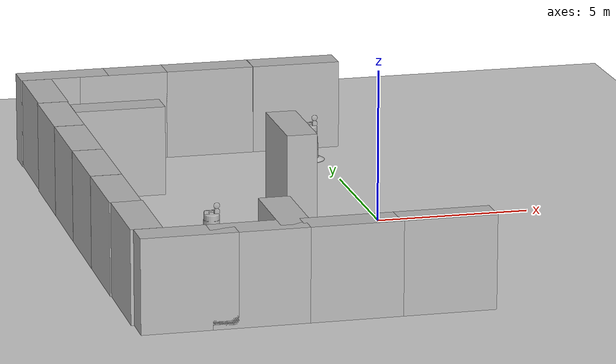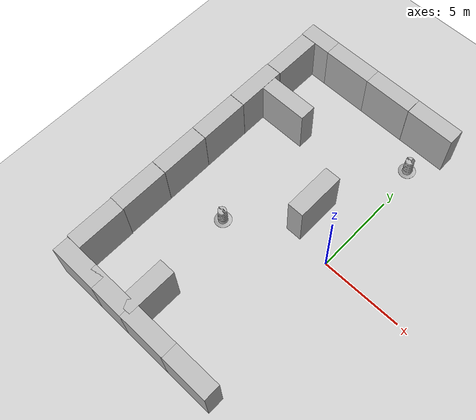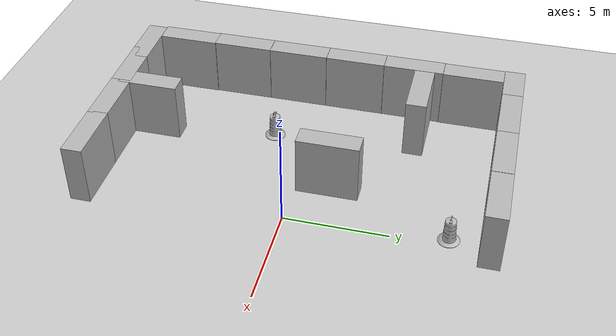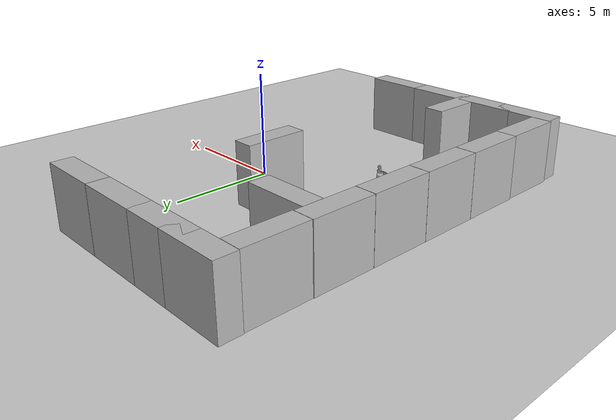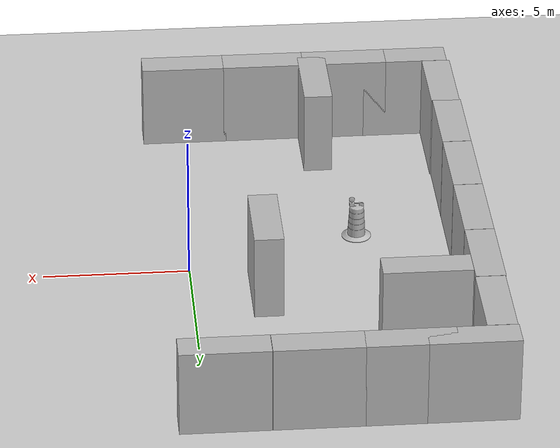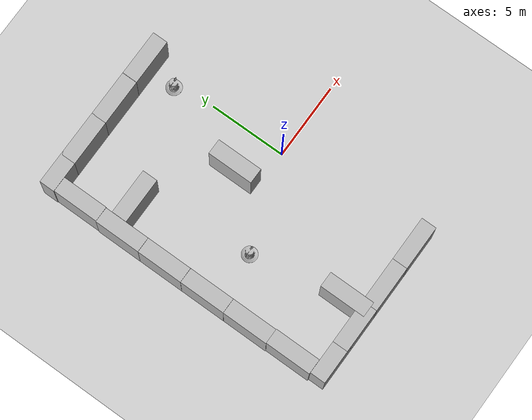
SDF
<sdf version="1.7">
 <world name="default">
  <model name="ground_plane">
   <static>1</static>
   <link name="link">
    <collision name="collision">
     <geometry><plane><normal>0 0 1</normal><size>100 100</size></plane></geometry>
     <surface>
      <contact><collide_bitmask>65535</collide_bitmask></contact>
      <friction><ode><mu>100</mu><mu2>50</mu2></ode></friction>
     </surface>
    </collision>
    <visual name="visual">
     <cast_shadows>0</cast_shadows>
     <geometry><plane><normal>0 0 1</normal><size>100 100</size></plane></geometry>
     <material>
      <script><uri>file://media/materials/scripts/gazebo.material</uri><name>Gazebo/Grey</name></script>
     </material>
    </visual>
   </link>
  </model>
  <model name="brick_box_3x1x3_2">
   <static>1</static>
   <link name="chassis">
    <pose>0 0 1.5 0 -0 0</pose>
    <collision name="collision"><geometry><box><size>3 1 3</size></box></geometry></collision>
    <visual name="visual">
     <geometry><mesh><uri>model://brick_box_3x1x3/meshes/simple_box.dae</uri><scale>3 1 3</scale></mesh></geometry>
     <material>
      <script>
       <uri>model://brick_box_3x1x3/materials/scripts</uri>
       <uri>model://brick_box_3x1x3/materials/textures</uri>
       <name>BrickBox/Diffuse</name>
      </script>
     </material>
    </visual>
   </link>
   <pose>-0.543123 9.49696 0 0 -0 0</pose>
  </model>
  <model name="brick_box_3x1x3_3">
   <static>1</static>
   <link name="chassis">
    <pose>0 0 1.5 0 -0 0</pose>
    <collision name="collision"><geometry><box><size>3 1 3</size></box></geometry></collision>
    <visual name="visual">
     <geometry><mesh><uri>model://brick_box_3x1x3/meshes/simple_box.dae</uri><scale>3 1 3</scale></mesh></geometry>
     <material>
      <script>
       <uri>model://brick_box_3x1x3/materials/scripts</uri>
       <uri>model://brick_box_3x1x3/materials/textures</uri>
       <name>BrickBox/Diffuse</name>
      </script>
     </material>
    </visual>
   </link>
   <pose>-3.5536 9.49696 0 0 -0 0</pose>
  </model>
  <model name="brick_box_3x1x3_4">
   <static>1</static>
   <link name="chassis">
    <pose>0 0 1.5 0 -0 0</pose>
    <collision name="collision"><geometry><box><size>3 1 3</size></box></geometry></collision>
    <visual name="visual">
     <geometry><mesh><uri>model://brick_box_3x1x3/meshes/simple_box.dae</uri><scale>3 1 3</scale></mesh></geometry>
     <material>
      <script>
       <uri>model://brick_box_3x1x3/materials/scripts</uri>
       <uri>model://brick_box_3x1x3/materials/textures</uri>
       <name>BrickBox/Diffuse</name>
      </script>
     </material>
    </visual>
   </link>
   <pose>-6.53304 9.49696 0 0 -0 0</pose>
  </model>
  <model name="brick_box_3x1x3_5">
   <static>1</static>
   <link name="chassis">
    <pose>0 0 1.5 0 -0 0</pose>
    <collision name="collision"><geometry><box><size>3 1 3</size></box></geometry></collision>
    <visual name="visual">
     <geometry><mesh><uri>model://brick_box_3x1x3/meshes/simple_box.dae</uri><scale>3 1 3</scale></mesh></geometry>
     <material>
      <script>
       <uri>model://brick_box_3x1x3/materials/scripts</uri>
       <uri>model://brick_box_3x1x3/materials/textures</uri>
       <name>BrickBox/Diffuse</name>
      </script>
     </material>
    </visual>
   </link>
   <pose>-8.55037 9.49697 0 0 -0 0</pose>
  </model>
  <model name="brick_box_3x1x3_9">
   <static>1</static>
   <link name="chassis">
    <pose>0 0 1.5 0 -0 0</pose>
    <collision name="collision"><geometry><box><size>3 1 3</size></box></geometry></collision>
    <visual name="visual">
     <geometry><mesh><uri>model://brick_box_3x1x3/meshes/simple_box.dae</uri><scale>3 1 3</scale></mesh></geometry>
     <material>
      <script>
       <uri>model://brick_box_3x1x3/materials/scripts</uri>
       <uri>model://brick_box_3x1x3/materials/textures</uri>
       <name>BrickBox/Diffuse</name>
      </script>
     </material>
    </visual>
   </link>
   <pose>-0.418988 -9.528 0 0 -0 0</pose>
  </model>
  <model name="brick_box_3x1x3_10">
   <static>1</static>
   <link name="chassis">
    <pose>0 0 1.5 0 -0 0</pose>
    <collision name="collision"><geometry><box><size>3 1 3</size></box></geometry></collision>
    <visual name="visual">
     <geometry><mesh><uri>model://brick_box_3x1x3/meshes/simple_box.dae</uri><scale>3 1 3</scale></mesh></geometry>
     <material>
      <script>
       <uri>model://brick_box_3x1x3/materials/scripts</uri>
       <uri>model://brick_box_3x1x3/materials/textures</uri>
       <name>BrickBox/Diffuse</name>
      </script>
     </material>
    </visual>
   </link>
   <pose>-3.33635 -9.528 0 0 -0 0</pose>
  </model>
  <model name="brick_box_3x1x3_11">
   <static>1</static>
   <link name="chassis">
    <pose>0 0 1.5 0 -0 0</pose>
    <collision name="collision"><geometry><box><size>3 1 3</size></box></geometry></collision>
    <visual name="visual">
     <geometry><mesh><uri>model://brick_box_3x1x3/meshes/simple_box.dae</uri><scale>3 1 3</scale></mesh></geometry>
     <material>
      <script>
       <uri>model://brick_box_3x1x3/materials/scripts</uri>
       <uri>model://brick_box_3x1x3/materials/textures</uri>
       <name>BrickBox/Diffuse</name>
      </script>
     </material>
    </visual>
   </link>
   <pose>-6.22269 -9.528 0 0 -0 0</pose>
  </model>
  <model name="brick_box_3x1x3_12">
   <static>1</static>
   <link name="chassis">
    <pose>0 0 1.5 0 -0 0</pose>
    <collision name="collision"><geometry><box><size>3 1 3</size></box></geometry></collision>
    <visual name="visual">
     <geometry><mesh><uri>model://brick_box_3x1x3/meshes/simple_box.dae</uri><scale>3 1 3</scale></mesh></geometry>
     <material>
      <script>
       <uri>model://brick_box_3x1x3/materials/scripts</uri>
       <uri>model://brick_box_3x1x3/materials/textures</uri>
       <name>BrickBox/Diffuse</name>
      </script>
     </material>
    </visual>
   </link>
   <pose>-8.42623 -9.528 0 0 -0 0</pose>
  </model>
  <model name="brick_box_3x1x3_5_clone_clone">
   <static>1</static>
   <link name="chassis">
    <pose>0 0 1.5 0 -0 0</pose>
    <collision name="collision"><geometry><box><size>3 1 3</size></box></geometry></collision>
    <visual name="visual">
     <geometry><mesh><uri>model://brick_box_3x1x3/meshes/simple_box.dae</uri><scale>3 1 3</scale></mesh></geometry>
     <material>
      <script>
       <uri>model://brick_box_3x1x3/materials/scripts</uri>
       <uri>model://brick_box_3x1x3/materials/textures</uri>
       <name>BrickBox/Diffuse</name>
      </script>
     </material>
    </visual>
   </link>
   <pose>-9.52076 7.4886 0 0 -0 1.57</pose>
  </model>
  <model name="brick_box_3x1x3_5_clone_clone_clone">
   <static>1</static>
   <link name="chassis">
    <pose>0 0 1.5 0 -0 0</pose>
    <collision name="collision"><geometry><box><size>3 1 3</size></box></geometry></collision>
    <visual name="visual">
     <geometry><mesh><uri>model://brick_box_3x1x3/meshes/simple_box.dae</uri><scale>3 1 3</scale></mesh></geometry>
     <material>
      <script>
       <uri>model://brick_box_3x1x3/materials/scripts</uri>
       <uri>model://brick_box_3x1x3/materials/textures</uri>
       <name>BrickBox/Diffuse</name>
      </script>
     </material>
    </visual>
   </link>
   <pose>-9.55276 4.48036 0 0 -0 1.57</pose>
  </model>
  <model name="brick_box_3x1x3_5_clone_clone_clone_clone">
   <static>1</static>
   <link name="chassis">
    <pose>0 0 1.5 0 -0 0</pose>
    <collision name="collision"><geometry><box><size>3 1 3</size></box></geometry></collision>
    <visual name="visual">
     <geometry><mesh><uri>model://brick_box_3x1x3/meshes/simple_box.dae</uri><scale>3 1 3</scale></mesh></geometry>
     <material>
      <script>
       <uri>model://brick_box_3x1x3/materials/scripts</uri>
       <uri>model://brick_box_3x1x3/materials/textures</uri>
       <name>BrickBox/Diffuse</name>
      </script>
     </material>
    </visual>
   </link>
   <pose>-9.55276 1.47212 0 0 -0 1.57</pose>
  </model>
  <model name="brick_box_3x1x3_5_clone_clone_clone_clone_0">
   <static>1</static>
   <link name="chassis">
    <pose>0 0 1.5 0 -0 0</pose>
    <collision name="collision"><geometry><box><size>3 1 3</size></box></geometry></collision>
    <visual name="visual">
     <geometry><mesh><uri>model://brick_box_3x1x3/meshes/simple_box.dae</uri><scale>3 1 3</scale></mesh></geometry>
     <material>
      <script>
       <uri>model://brick_box_3x1x3/materials/scripts</uri>
       <uri>model://brick_box_3x1x3/materials/textures</uri>
       <name>BrickBox/Diffuse</name>
      </script>
     </material>
    </visual>
   </link>
   <pose>-9.55276 -1.53612 0 0 -0 1.57</pose>
  </model>
  <model name="brick_box_3x1x3_5_clone_clone_clone_clone_1">
   <static>1</static>
   <link name="chassis">
    <pose>0 0 1.5 0 -0 0</pose>
    <collision name="collision"><geometry><box><size>3 1 3</size></box></geometry></collision>
    <visual name="visual">
     <geometry><mesh><uri>model://brick_box_3x1x3/meshes/simple_box.dae</uri><scale>3 1 3</scale></mesh></geometry>
     <material>
      <script>
       <uri>model://brick_box_3x1x3/materials/scripts</uri>
       <uri>model://brick_box_3x1x3/materials/textures</uri>
       <name>BrickBox/Diffuse</name>
      </script>
     </material>
    </visual>
   </link>
   <pose>-9.55276 -4.54436 0 0 -0 1.57</pose>
  </model>
  <model name="brick_box_3x1x3_5_clone_clone_clone_clone_2">
   <static>1</static>
   <link name="chassis">
    <pose>0 0 1.5 0 -0 0</pose>
    <collision name="collision"><geometry><box><size>3 1 3</size></box></geometry></collision>
    <visual name="visual">
     <geometry><mesh><uri>model://brick_box_3x1x3/meshes/simple_box.dae</uri><scale>3 1 3</scale></mesh></geometry>
     <material>
      <script>
       <uri>model://brick_box_3x1x3/materials/scripts</uri>
       <uri>model://brick_box_3x1x3/materials/textures</uri>
       <name>BrickBox/Diffuse</name>
      </script>
     </material>
    </visual>
   </link>
   <pose>-9.52076 -7.5206 0 0 -0 1.57</pose>
  </model>
  <model name="brick_box_3x1x3_clone_0_clone_clone">
   <static>1</static>
   <link name="chassis">
    <pose>0 0 1.5 0 -0 0</pose>
    <collision name="collision"><geometry><box><size>3 1 3</size></box></geometry></collision>
    <visual name="visual">
     <geometry><mesh><uri>model://brick_box_3x1x3/meshes/simple_box.dae</uri><scale>3 1 3</scale></mesh></geometry>
     <material>
      <script>
       <uri>model://brick_box_3x1x3/materials/scripts</uri>
       <uri>model://brick_box_3x1x3/materials/textures</uri>
       <name>BrickBox/Diffuse</name>
      </script>
     </material>
    </visual>
   </link>
   <pose>-7.54638 5.06819 0 0 -0 0</pose>
  </model>
  <model name="brick_box_3x1x3_5_clone_clone_clone_clone_15_clone_clone">
   <static>1</static>
   <link name="chassis">
    <pose>0 0 1.5 0 -0 0</pose>
    <collision name="collision"><geometry><box><size>3 1 3</size></box></geometry></collision>
    <visual name="visual">
     <geometry><mesh><uri>model://brick_box_3x1x3/meshes/simple_box.dae</uri><scale>3 1 3</scale></mesh></geometry>
     <material>
      <script>
       <uri>model://brick_box_3x1x3/materials/scripts</uri>
       <uri>model://brick_box_3x1x3/materials/textures</uri>
       <name>BrickBox/Diffuse</name>
      </script>
     </material>
    </visual>
   </link>
   <pose>-5.04956 -8.124 0 0 -0 1.57</pose>
  </model>
  <model name="brick_box_3x1x3_5_clone_clone_clone_clone_15_clone_0_clone">
   <static>1</static>
   <link name="chassis">
    <pose>0 0 1.5 0 -0 0</pose>
    <collision name="collision"><geometry><box><size>3 1 3</size></box></geometry></collision>
    <visual name="visual">
     <geometry><mesh><uri>model://brick_box_3x1x3/meshes/simple_box.dae</uri><scale>3 1 3</scale></mesh></geometry>
     <material>
      <script>
       <uri>model://brick_box_3x1x3/materials/scripts</uri>
       <uri>model://brick_box_3x1x3/materials/textures</uri>
       <name>BrickBox/Diffuse</name>
      </script>
     </material>
    </visual>
   </link>
   <pose>-2.50068 1.61393 0 0 -0 1.57</pose>
  </model>
  <model name="Construction Barrel">
   <link name="link">
    <inertial>
     <pose>0 0 0.4 0 -0 0</pose>
     <mass>500</mass>
     <inertia><ixx>51.2096</ixx><iyy>51.2096</iyy><izz>25</izz><ixy>0</ixy><ixz>0</ixz><iyz>0</iyz></inertia>
    </inertial>
    <collision name="collision">
     <geometry><mesh><uri>model://construction_barrel/meshes/construction_barrel.dae</uri></mesh></geometry>
    </collision>
    <visual name="visual">
     <geometry><mesh><uri>model://construction_barrel/meshes/construction_barrel.dae</uri></mesh></geometry>
    </visual>
   </link>
   <pose>-0.403914 7.61222 1e-06 2e-06 3e-06 -6e-06</pose>
  </model>
  <model name="Construction Barrel_0">
   <link name="link">
    <inertial>
     <pose>0 0 0.4 0 -0 0</pose>
     <mass>500</mass>
     <inertia><ixx>51.2096</ixx><iyy>51.2096</iyy><izz>25</izz><ixy>0</ixy><ixz>0</ixz><iyz>0</iyz></inertia>
    </inertial>
    <collision name="collision">
     <geometry><mesh><uri>model://construction_barrel/meshes/construction_barrel.dae</uri></mesh></geometry>
    </collision>
    <visual name="visual">
     <geometry><mesh><uri>model://construction_barrel/meshes/construction_barrel.dae</uri></mesh></geometry>
    </visual>
   </link>
   <pose>-5.96175 -1.95797 0 0 0 -3e-06</pose>
  </model>
 </world>
</sdf>
